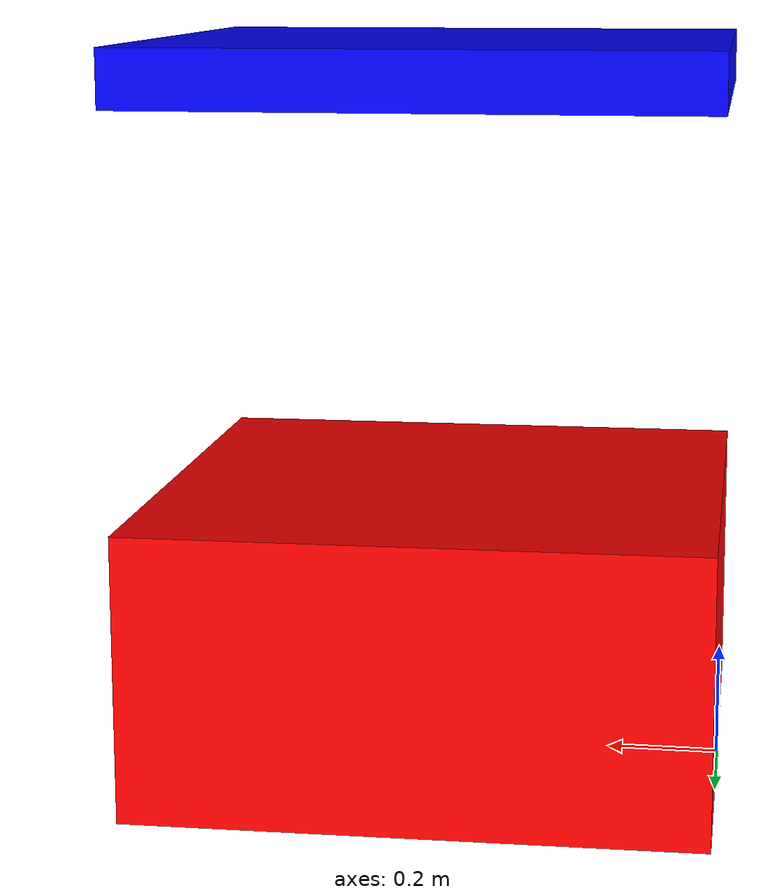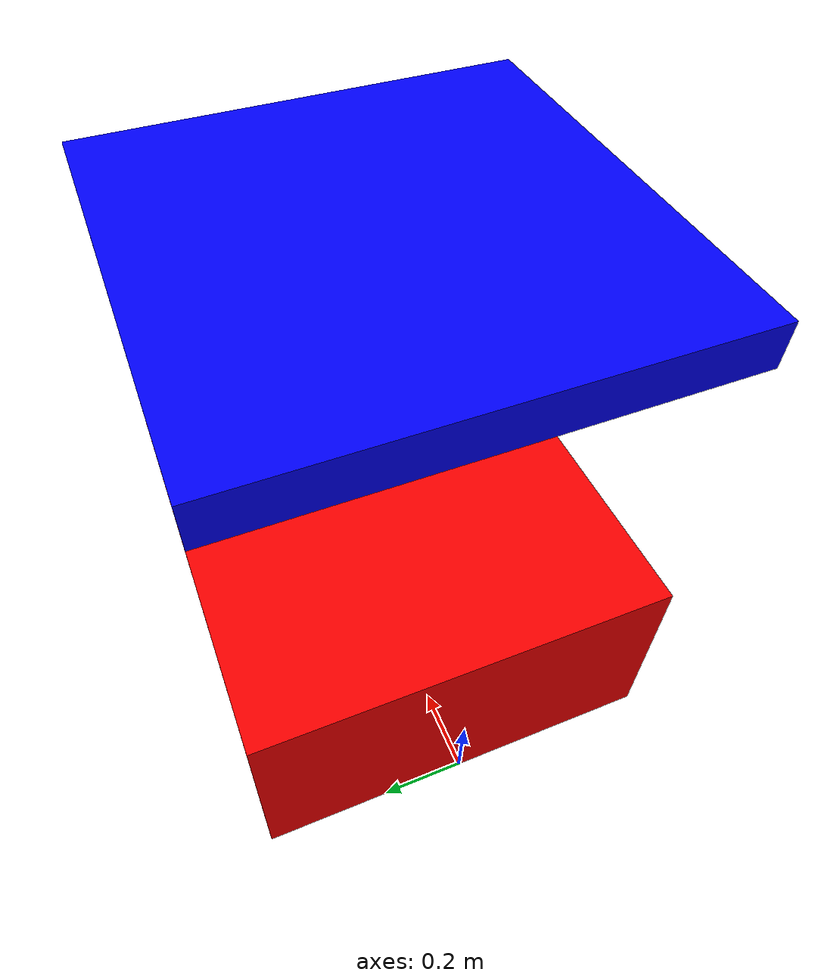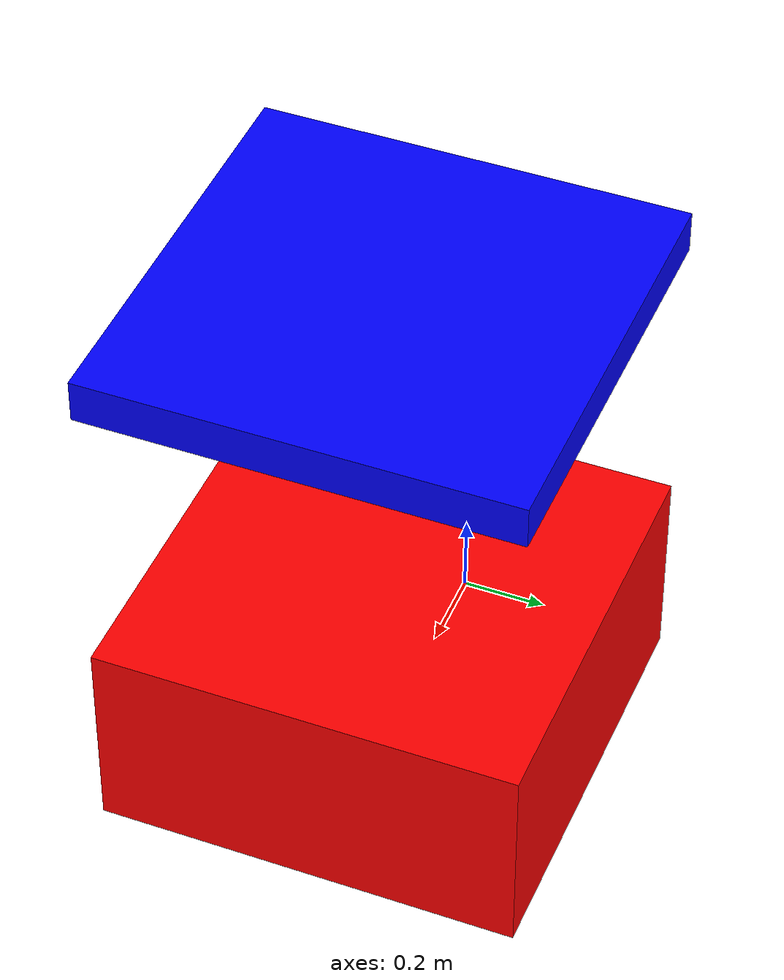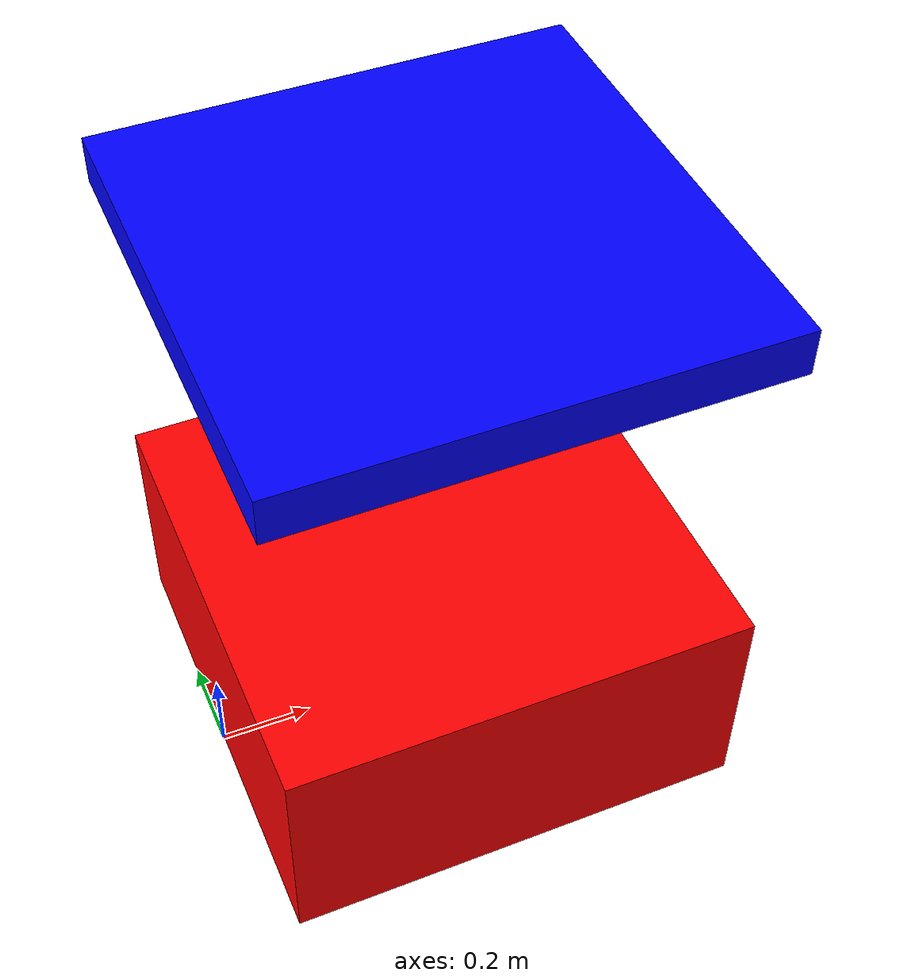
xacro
<?xml version="1.0" encoding="UTF-8"?>
<robot name="test_robot_01" xmlns:xacro="http://www.ros.org/wiki/xacro">
  <material name="red">
    <color rgba="1.0 0.0 0.0 1.0"/>
  </material>
  <material name="green">
    <color rgba="0.0 1.0 0.0 1.0"/>
  </material>
  <material name="blue">
    <color rgba="0.0 0.0 1.0 1.0"/>
  </material>
  <material name="yellow">
    <color rgba="1.0 1.0 0.0 1.0"/>
  </material>

  <xacro:macro name="box_inertial" params="mass origin d w h">
    <inertial>
      <origin xyz="${origin}" rpy="0 0 0"/>
      <mass value="${mass}"/>
      <inertia ixx="${mass * (w ** 2 + h ** 2) / 12}"
               ixy="0.0" iyy="${mass * (d ** 2 + h ** 2) / 12}"
               ixz="0.0" iyz="0.0" izz="${mass * (w ** 2 + d ** 2) / 12}"/>
    </inertial>
  </xacro:macro>

  <xacro:macro name="default_motor_transmission" params="joint_name gazebo_control_mode">
    <transmission name="${joint_name}_trans">
      <type>transmission_interface/SimpleTransmission</type>
      <joint name="${joint_name}">
        <xacro:if value="${gazebo_control_mode=='effort'}">
          <hardwareInterface>hardware_interface/EffortJointInterface</hardwareInterface>
        </xacro:if>
        <xacro:if value="${gazebo_control_mode=='position'}">
          <hardwareInterface>hardware_interface/PositionJointInterface</hardwareInterface>
        </xacro:if>
        <xacro:if value="${gazebo_control_mode=='velocity'}">
          <hardwareInterface>hardware_interface/VelocityJointInterface</hardwareInterface>
        </xacro:if>
      </joint>
      <actuator name="${joint_name}_motor">
        <xacro:if value="${gazebo_control_mode=='effort'}">
          <hardwareInterface>hardware_interface/EffortJointInterface</hardwareInterface>
        </xacro:if>
        <xacro:if value="${gazebo_control_mode=='position'}">
          <hardwareInterface>hardware_interface/PositionJointInterface</hardwareInterface>
        </xacro:if>
        <xacro:if value="${gazebo_control_mode=='velocity'}">
          <hardwareInterface>hardware_interface/VelocityJointInterface</hardwareInterface>
        </xacro:if>
        <mechanicalReduction>1</mechanicalReduction>
      </actuator>
    </transmission>
  </xacro:macro>

  <link name="right_pad2">
    <visual>
      <origin xyz="0.5 0 0.25" rpy="0 0 0"/>
      <geometry>
        <box size="1.0 1.0 0.5" />
      </geometry>
      <material name="red"/>
    </visual>
    <collision>
      <origin xyz="0.5 0 0.25" rpy="0 0 0"/>
      <geometry>
        <box size="1.0 1.0 0.5" />
      </geometry>
    </collision>
    <xacro:box_inertial mass="0.5" origin="0.5 0 0.25" d="1.0" w="1.0" h="0.5"/>
  </link>
  <gazebo reference="right_pad2">
    <material>Gazebo/Green</material>
    <mu1>1</mu1>
    <mu2>1</mu2>
    <kp>40000.0</kp>
    <kd>0.0</kd>
    <minDepth>0.0</minDepth>
    <maxContacts>5</maxContacts>
    <selfCollide>false</selfCollide>
    <dampingFactor>0.0</dampingFactor>
  </gazebo>

  <joint name="right_pad2_joint" type="continuous">
    <parent link="right_pad2"/>
    <child  link="right_pad3"/>
    <origin xyz="0.5 0 0.5" rpy="0 0 0"/>
    <axis xyz="0 0 1"/>
    <limit effort="1000.0" velocity="10.0"/>
    <dynamics damping="0.0" friction="0"/>
  </joint>

  <link name="right_pad3">
    <collision name="right_pad3_collision">
      <origin xyz="0.0 0 0.75" rpy="0 0 0"/>
      <geometry>
        <box size="1.0 1.0 0.1" />
      </geometry>
    </collision>
    <visual name="right_pad3_visual">
      <origin xyz="0.0 0 0.75" rpy="0 0 0"/>
      <geometry>
        <box size="1.0 1.0 0.1" />
      </geometry>
      <material name="blue"/>
    </visual>
    <xacro:box_inertial mass="0.5" origin="0.0 0 0.75" d="1.0" w="1.0" h="0.1"/>
  </link>
  <gazebo reference="right_pad3">
    <material>Gazebo/Blue</material>
    <mu1>1</mu1>
    <mu2>1</mu2>
    <kp>40000.0</kp>
    <kd>0.0</kd>
    <minDepth>0.0</minDepth>
    <maxContacts>5</maxContacts>
    <selfCollide>false</selfCollide>
    <dampingFactor>0.0</dampingFactor>
  </gazebo>

  <gazebo>
    <plugin name="gazebo_ros_control" filename="libgazebo_dc_motor.so">
      <robotNamespace>test_robot_01</robotNamespace>
      <robotSimType>gazebo_dc_motor/DefaultRobotHWSim</robotSimType>
      <legacyModeNS>false</legacyModeNS>
    </plugin>
  </gazebo>
  <xacro:default_motor_transmission joint_name="right_pad2_joint" gazebo_control_mode="effort"/>
</robot>
